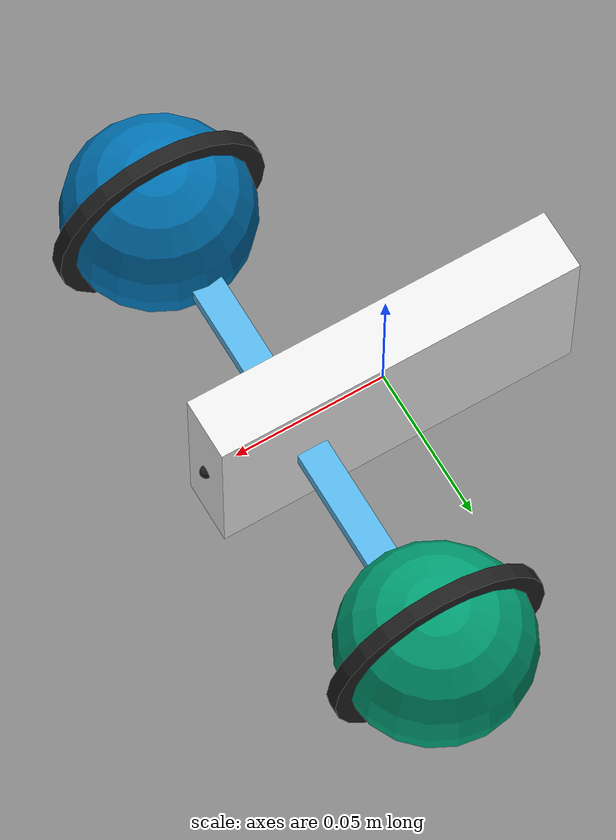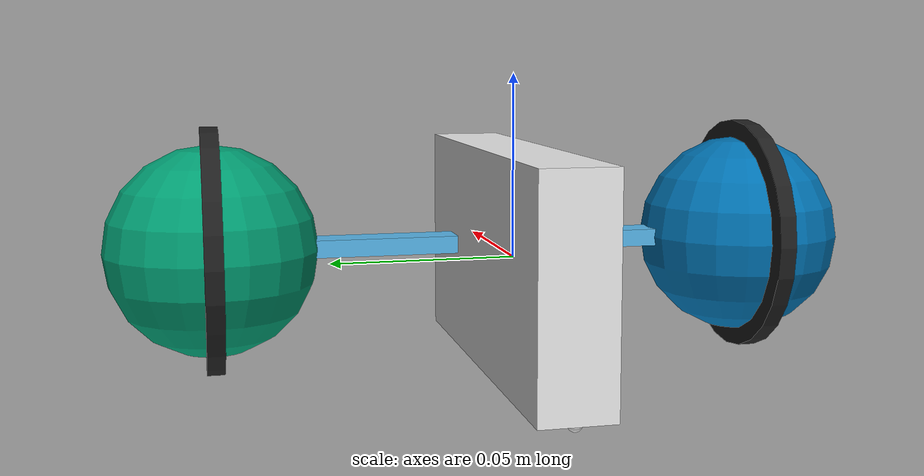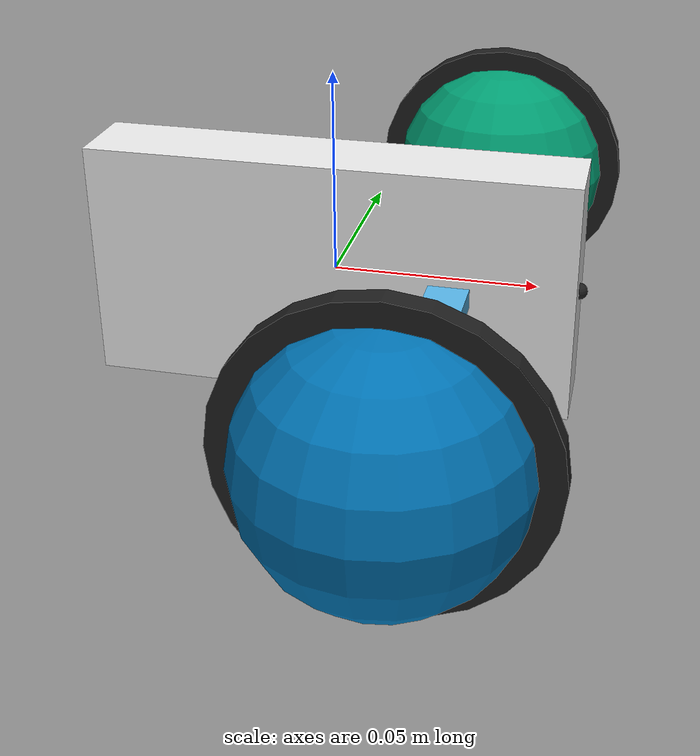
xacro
<?xml version='1.0'?>

<robot name="imandrabot" xmlns:xacro="http://www.ros.org/wiki/xacro">

  <xacro:property name="cameraSize" value="0.05"/>
  <xacro:property name="cameraMass" value="0.1"/>

  <xacro:include filename="$(find imandrabot_description)/imandrabot.gazebo" />
  <xacro:include filename="$(find imandrabot_description)/materials.xacro" />
  <xacro:include filename="$(find imandrabot_description)/macros.xacro" />

  <!-- "Spherical wheel" macros -->

  <xacro:macro name="big_sphere">
    <origin xyz="0 0 0" rpy="0 0 0"/>
    <geometry> <sphere radius="0.03"/> </geometry>
  </xacro:macro>

  <xacro:macro name="big_wheel">
    <origin xyz="0 0 0" rpy="0 1.5707 1.5707"/>
    <geometry> <cylinder radius="0.035" length="0.005"/> </geometry>
  </xacro:macro>

  <xacro:macro name="sphere_wheel" params="name">
    <link name="${name}">
      <visual>    <xacro:big_sphere/> </visual>
      <collision> <xacro:big_sphere/> </collision>
      <material name="White"/>
      <inertial>
        <origin xyz="0 0 0" rpy="0 0 0"/>
        <mass value="0.01"/>
        <inertia ixx="0.00001" ixy="0.0" ixz="0.0" iyy="0.00001" iyz="0.0" izz="0.00001"/>
      </inertial>
    </link>
    <link name="${name}_wheel">
      <visual>    <xacro:big_wheel/> </visual>
      <collision> <xacro:big_wheel/> </collision>
      <material name="Black"/>
      <inertial>
        <origin xyz="0 0 0" rpy="0 0 0"/>
        <mass value="0.01"/>
        <inertia ixx="0.00001" ixy="0.0" ixz="0.0" iyy="0.00001" iyz="0.0" izz="0.00001"/>
      </inertial>
    </link>
    <joint type="continuous" name="${name}_hinge">
      <origin xyz="0 0 0" rpy="0 0 0"/>
      <parent link="${name}"/>
      <child link="${name}_wheel"/>
      <axis xyz="0 1 0" rpy="0 0 0"/>
      <limit effort="10" velocity="1"/>
      <joint_properties damping="0.0" friction="0.0"/>
    </joint>
  </xacro:macro>

  <xacro:macro name="ball_bearing" params="offset">
    <visual>
      <origin xyz="${offset} 0 -0.03" rpy="0 0 0"/>
      <geometry> <sphere radius="0.002"/> </geometry>
    </visual>
    <collision>
      <origin xyz="${offset} 0 -0.03" rpy="0 0 0"/>
      <geometry> <sphere radius="0.002"/> </geometry>
      <surface>
        <friction>
          <ode>
            <mu>0</mu>
            <mu2>0</mu2>
            <slip1>1.0</slip1>
            <slip2>1.0</slip2>
          </ode>
        </friction>
      </surface>
    </collision>
  </xacro:macro>

  <link name="base">
    <visual>    <geometry><box size="0.12 0.02 0.06"/></geometry> </visual>
    <collision> <geometry><box size="0.12 0.02 0.06"/></geometry> </collision>
    <xacro:ball_bearing offset="-0.057"/>
    <inertial>
      <origin xyz="0 0 0" rpy="0 0 0"/>
      <mass value="1"/>
      <inertia
        ixx="${( 1.0 / 12.0 ) * (0.02 * 0.02 + 0.06 * 0.06) }" ixy="0.0" ixz="0.0"
        iyy="${( 1.0 / 12.0 ) * (0.06 * 0.06 + 0.06 * 0.06) }" iyz="0.0"
        izz="${( 1.0 / 12.0 ) * (0.02 * 0.02 + 0.06 * 0.06) }"/>
    </inertial>
  </link>

  <link name="strut">
    <visual>    <geometry><box size="0.01 0.12 0.005"/></geometry> </visual>
    <collision> <geometry><box size="0.01 0.12 0.005"/></geometry> </collision>
    <inertial>
      <origin xyz="0 0 0" rpy="0 0 0"/>
      <mass value="0.01"/>
      <inertia
        ixx="${( 0.01 / 12.0 ) * (0.12 * 0.12 + 0.005 * 0.005) }" ixy="0.0" ixz="0.0"
        iyy="${( 0.01 / 12.0 ) * (0.01 * 0.01 + 0.005 * 0.005) }" iyz="0.0"
        izz="${( 0.01 / 12.0 ) * (0.01 * 0.01 + 0.12 * 0.12) }"/>
    </inertial>
  </link>

  <joint type="fixed" name="strut_joint">
    <origin xyz="0.03 0 0" rpy="0 0 0"/>
    <parent link="base"/>
    <child link="strut"/>
  </joint>

  <xacro:sphere_wheel name= "leftwheel"/>
  <xacro:sphere_wheel name="rightwheel"/>

  <joint type="fixed" name="strut_left_joint">
    <origin xyz="0  0.08 0" rpy="0 0 0"/>
    <parent link="strut"/>
    <child link="leftwheel"/>
  </joint>

  <joint type="fixed" name="strut_right_joint">
    <origin xyz="0 -0.08 0" rpy="0 0 0"/>
    <parent link="strut"/>
    <child link="rightwheel"/>
  </joint>

  <!--  Scanner -->

  <link name="scanner">
    <visual name="scanner_vis">
      <geometry> <sphere radius=".002" /> </geometry>
      <material name="Black"/>
    </visual>
    <inertial>
      <mass value="0.000001" />
      <inertia ixx="0.00000001" ixy="0.0" ixz="0.0"
        iyy="0.0000001" iyz="0.0"
        izz="0.0000001" />
    </inertial>
  </link>

  <joint type="fixed" name="scanner joint">
    <origin xyz="0.06 0 0" rpy="0 0 0"/>
    <parent link="base"/>
    <child link="scanner"/>
  </joint>

</robot>
